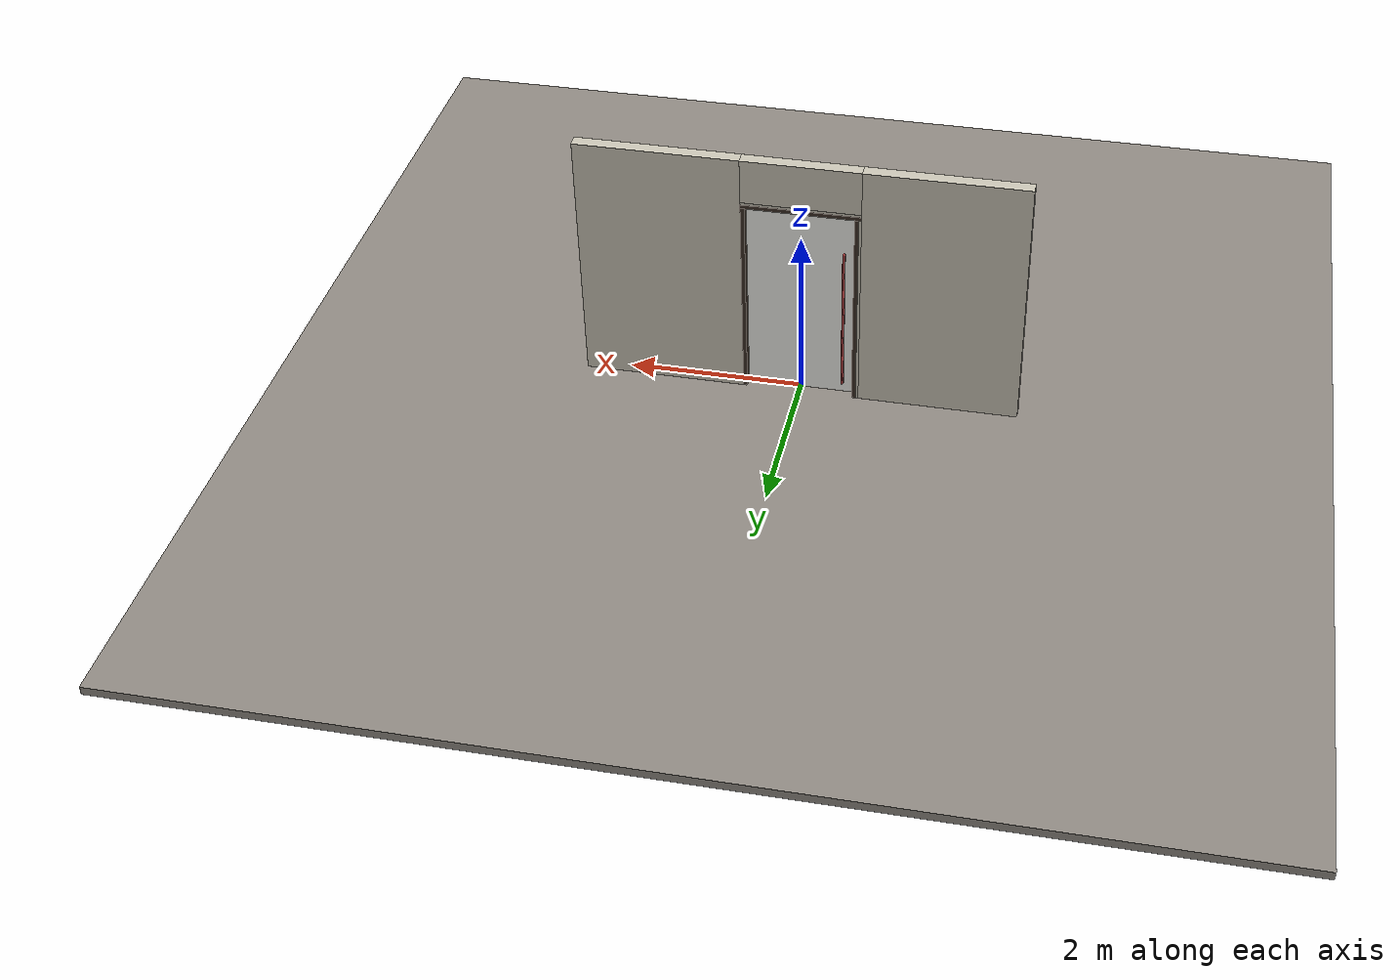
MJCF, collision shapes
<?xml version="1.0" ?>
<mujoco model="db0969_pivot_simple">
  <compiler angle="radian" meshdir="../../hardware" texturedir="../../textures" autolimits="true" inertiafromgeom="false"/>
  <option timestep="0.002" integrator="implicitfast" cone="elliptic" impratio="10" noslip_iterations="3">
    <flag multiccd="enable"/>
  </option>
  <size memory="16M"/>
  <default>
    <geom condim="4" solref="0.005 1" solimp="0.95 0.99 0.001"/>
    <joint solreflimit="0.005 1" solimplimit="0.95 0.99 0.001"/>
    <tendon solreflimit="0.005 1"/>
    <equality solref="0.002 1"/>
  </default>
  <visual>
    <headlight ambient="0.4 0.4 0.4" diffuse="0.7 0.7 0.7" specular="0.2 0.2 0.2"/>
    <quality shadowsize="4096"/>
    <map znear="0.01" zfar="60"/>
  </visual>
  <asset>
    <mesh name="pull_897e207f65" file="pull_897e207f65.obj"/>
    <material name="mat_floor" rgba="0.55 0.53 0.5 1" specular="0.2" shininess="0.15" reflectance="0"/>
    <material name="mat_wall" rgba="0.78 0.76 0.7 1" specular="0.2" shininess="0.1" reflectance="0"/>
    <material name="mat_leaf" rgba="0.93 0.93 0.91 1" specular="0.2" shininess="0.35" reflectance="0"/>
    <material name="mat_hinge" rgba="0.65 0.66 0.68 1" specular="0.74" shininess="0.5" reflectance="0.36"/>
    <material name="mat_op_stainless" rgba="0.75 0.76 0.77 1" specular="0.8" shininess="0.65" reflectance="0.4"/>
    <material name="mat_frame" rgba="0.22 0.17 0.13 1" specular="0.8" shininess="0.6" reflectance="0.4"/>
    <material name="mat_stop" rgba="0.9 0.9 0.92 1" specular="0.8" shininess="0.9" reflectance="0.4"/>
    <texture name="skybox" type="skybox" builtin="gradient" rgb1="0.6 0.7 0.85" rgb2="0.9 0.92 0.95" width="256" height="256"/>
  </asset>
  <worldbody>
    <light name="sun" pos="1.5 -2.5 4" dir="-0.3 0.5 -0.8" directional="true" diffuse="0.8 0.8 0.8" specular="0.3 0.3 0.3" castshadow="true"/>
    <light name="fill" pos="-1.5 2.5 3" dir="0.3 -0.5 -0.7" directional="true" diffuse="0.35 0.35 0.4" castshadow="false"/>
    <camera name="robot_view" pos="0 -2.84325 2.01415" xyaxes="1 0 0 0 0.26963 0.962964" fovy="52"/>
    <camera name="far_view" pos="0 2.92925 2.01415" xyaxes="-1 0 0 0 -0.26963 0.962964" fovy="52"/>
    <camera name="iso" pos="-2.19355 -2.38145 2.47595" xyaxes="0.741536 -0.670913 0 0.242917 0.268487 0.932151" fovy="46"/>
    <camera name="detail_handle" pos="-0.312 -0.8875 1.33" xyaxes="0.97561 0.219512 0 -0.070934 0.315262 0.94635" fovy="38"/>
    <geom name="floor" type="box" size="6 6 0.05" pos="0 0 -0.05" material="mat_floor" group="0" contype="1" conaffinity="1" friction="0.8 0.005 0.0001" density="2400"/>
    <geom name="wall_left" type="box" size="0.9095 0.0725 1.506" pos="-1.5905 0.043 1.506" material="mat_wall" group="0" contype="1" conaffinity="1" friction="0.6 0.005 0.0001" density="800"/>
    <geom name="wall_right" type="box" size="0.9245 0.0725 1.506" pos="1.5755 0.043 1.506" material="mat_wall" group="0" contype="1" conaffinity="1" friction="0.6 0.005 0.0001" density="800"/>
    <geom name="wall_header" type="box" size="0.666 0.0725 0.2625" pos="-0.015 0.043 2.7495" material="mat_wall" group="0" contype="1" conaffinity="1" friction="0.6 0.005 0.0001" density="800"/>
    <geom name="pivot_bottom_socket" type="box" size="0.035 0.035 0.008" pos="0.587 -0.0325 -0.002" material="mat_hinge" group="1" contype="0" conaffinity="0" density="7850"/>
    <geom name="pivot_top_bracket" type="box" size="0.035 0.035 0.0355" pos="0.587 -0.0325 2.4515" material="mat_hinge" group="1" contype="0" conaffinity="0" density="7850"/>
    <geom name="jamb_hinge" type="box" size="0.0225 0.0725 1.206" pos="0.6285 0.043 1.206" material="mat_frame" group="0" contype="1" conaffinity="1" friction="0.6 0.005 0.0001" density="300"/>
    <geom name="jamb_strike" type="box" size="0.0225 0.0725 1.206" pos="-0.6285 0.043 1.206" material="mat_frame" group="0" contype="1" conaffinity="1" friction="0.6 0.005 0.0001" density="300"/>
    <geom name="stud_strike" type="box" size="0.015 0.0725 1.206" pos="-0.666 0.043 1.206" material="mat_wall" group="0" contype="1" conaffinity="1" friction="0.6 0.005 0.0001" density="500"/>
    <geom name="jamb_head" type="box" size="0.666 0.0725 0.0225" pos="-0.015 0.043 2.4345" material="mat_frame" group="0" contype="1" conaffinity="1" friction="0.6 0.005 0.0001" density="300"/>
    <geom name="head_stud" type="box" size="0.666 0.0725 0.015" pos="-0.015 0.043 2.472" material="mat_wall" group="0" contype="1" conaffinity="1" friction="0.6 0.005 0.0001" density="500"/>
    <geom name="floor_stop_dome" type="sphere" size="0.025" pos="1.367036 -0.664836 0" material="mat_stop" group="0" contype="1" conaffinity="1" friction="0.6 0.005 0.0001" density="7000"/>
    <site name="approach_point" pos="0 -1.5 0" quat="1 0 0 0" size="0.05" rgba="0.2 0.9 0.2 0.5" group="4"/>
    <site name="goal_point" pos="0 1.5 0" quat="1 0 0 0" size="0.05" rgba="0.2 0.9 0.2 0.5" group="4"/>
    <site name="door_plane_center" pos="0 0 1.206" quat="1 0 0 0" size="0.02" rgba="0.2 0.9 0.2 0.5" group="4"/>
    <body name="leaf" pos="0.606 0 0">
      <inertial pos="-0.68543 0 1.181689" mass="104.4" quat="0.508553 0.508553 -0.491298 0.491298" diaginertia="14.095896367 46.960659814 60.773600182"/>
      <joint name="leaf_hinge" type="hinge" axis="0 0 1" pos="-0.019 -0.0325 0" limited="true" range="0 2.443461" solreflimit="0.02 1" damping="0.948781" frictionloss="1.973839" armature="0.02"/>
      <geom name="leaf_slab" type="box" size="0.6 0.0225 1.2" pos="-0.603 0 1.208" material="mat_leaf" group="0" contype="1" conaffinity="1" friction="0.4 0.005 0.0001" density="1"/>
      <geom name="leaf_pull_n" type="mesh" mesh="pull_897e207f65" pos="-1.098 -0.0225 1.05" quat="0 0 -0.707107 0.707107" material="mat_op_stainless" group="1" contype="0" conaffinity="0" density="3000"/>
      <geom name="leaf_pull_col_n" type="capsule" size="0.016 0.88" pos="-1.098 -0.0875 1.05" material="mat_op_stainless" group="3" contype="1" conaffinity="1" rgba="0.8 0.3 0.3 0.25" friction="0.7 0.01 0.0001" density="3000"/>
      <geom name="leaf_pull_p" type="mesh" mesh="pull_897e207f65" pos="-1.098 0.0225 1.05" quat="0 0 0.707107 0.707107" material="mat_op_stainless" group="1" contype="0" conaffinity="0" density="3000"/>
      <geom name="leaf_pull_col_p" type="capsule" size="0.016 0.88" pos="-1.098 0.0875 1.05" material="mat_op_stainless" group="3" contype="1" conaffinity="1" rgba="0.8 0.3 0.3 0.25" friction="0.7 0.01 0.0001" density="3000"/>
      <site name="leaf_pull_grip_n" pos="-1.098 -0.0875 1.05" quat="1 0 0 0" size="0.012" rgba="0.2 0.9 0.2 0.5" group="4"/>
      <site name="leaf_pull_grip_p" pos="-1.098 0.0875 1.05" quat="1 0 0 0" size="0.012" rgba="0.2 0.9 0.2 0.5" group="4"/>
      <site name="leaf_edge_mid" pos="-1.203 0 1.2" quat="1 0 0 0" size="0.02" rgba="0.2 0.9 0.2 0.5" group="4"/>
    </body>
  </worldbody>
  <sensor>
    <jointpos name="leaf_hinge_pos" joint="leaf_hinge"/>
    <jointvel name="leaf_hinge_vel" joint="leaf_hinge"/>
  </sensor>
</mujoco>
